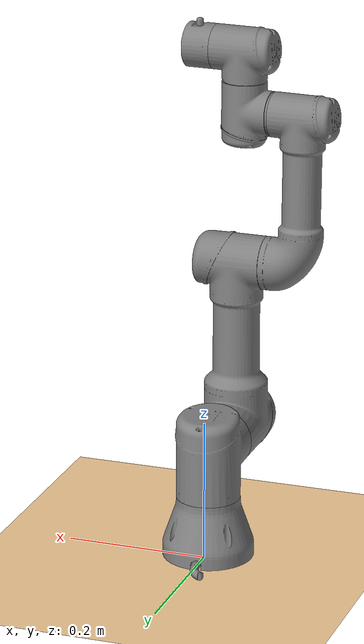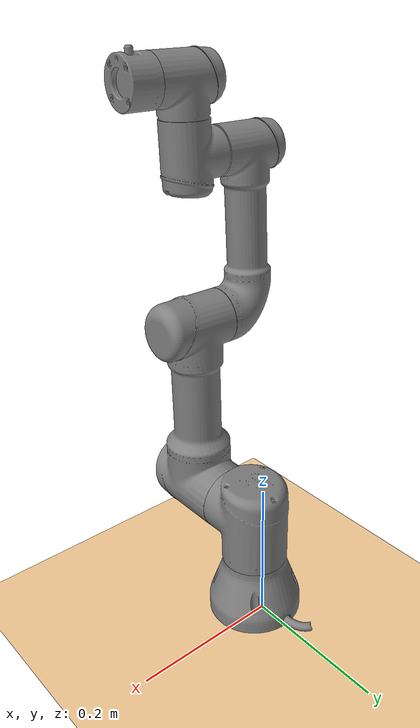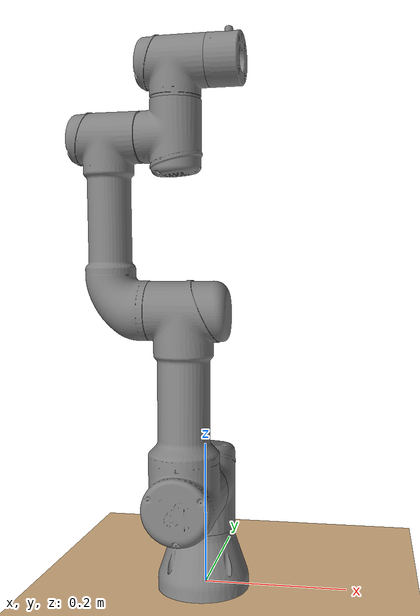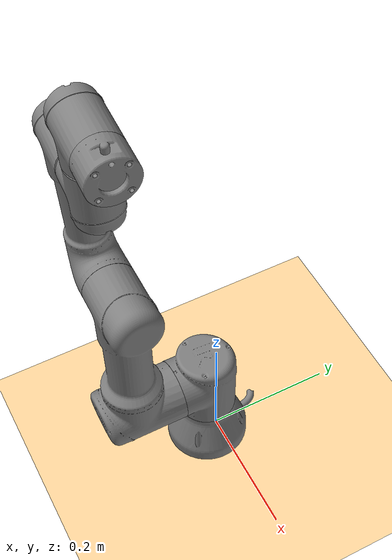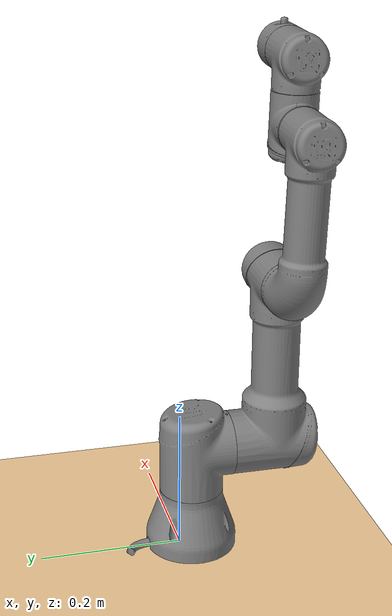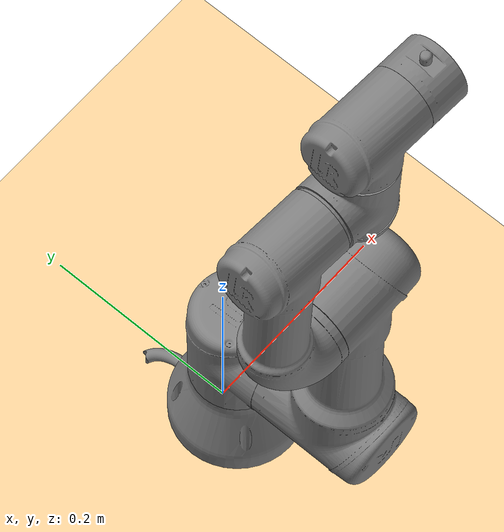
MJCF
<mujoco model="UR3">
    <compiler angle="radian" />
    <asset>
        <mesh name="link1-v4" file="meshes/link1-v4.stl" scale="0.001 0.001 0.001" />
        <mesh name="base_link-v3" file="meshes/base_link-v3.stl" scale="0.001 0.001 0.001" />
        <mesh name="link2-v3" file="meshes/link2-v3.stl" scale="0.001 0.001 0.001" />
        <mesh name="link3-v3" file="meshes/link3-v3.stl" scale="0.001 0.001 0.001" />
        <mesh name="link4-v3" file="meshes/link4-v3.stl" scale="0.001 0.001 0.001" />
        <mesh name="link5-v3" file="meshes/link5-v3.stl" scale="0.001 0.001 0.001" />
        <mesh name="link6-v3" file="meshes/link6-v3.stl" scale="0.001 0.001 0.001" />
    </asset>
    <worldbody>
        <light directional="true" pos="-0.5 0.5 3" dir="0 0 -1" />
        <geom pos="0 0 0" size="1 1 1" type="plane" rgba="1 0.83 0.61 0.5" />
        <body name="base_link-v3" pos="0.0 0.0 0.0425" euler="-0.0 0.0 -6.5052130349130235e-18">
            <geom name="base_link-v3_geom" type="mesh" mesh="base_link-v3" pos="0 0 0" euler="0 0 0" />
            <inertial mass="4.819767656359503" pos="-5.106034955521863e-05 -0.016332230855220346 0.003953847461743631" fullinertia="0.006237181628739425 0.006116331922340007 0.008054234532667305 1.938536735441771e-05 -1.7470323254963813e-05 0.00014640204534811205" />
            <body name="link1-v4" pos="0.00017721710714229611 -0.02119581809949577 0.10461075851854185" euler="1.5713279126393402 -8.474091755303828e-33 2.256949153578789e-36">
                <joint name="base_link-v3_j1" type="hinge" axis="3.460773334570648e-21 1.000000141511904 4.141054253019652e-07" pos="-0.00013621710714229563 -0.06083789902772309 -0.004010478101737522" />
                <geom name="link1-v4_geom" type="mesh" mesh="link1-v4" pos="0 0 0" euler="0 0 0" />
                <inertial mass="0.3149483948341394" pos="-0.00026523382716388396 0.04913260362366625 -0.009237325633227001" fullinertia="0.00023120994782054543 0.0004074233794319988 0.00024406222096013278 -6.830148326541089e-07 9.204290047829156e-07 -5.209320715751612e-05" />
                <body name="link2-v3" pos="0.006294247901650241 0.12205974019761957 0.11083037376403816" euler="-1.5707963267948966 1.224646799159157e-16 -3.141592653589793">
                    <joint name="link1-v4_j2" type="hinge" axis="-6.505263748201317e-18 1.0000001415119049 -4.1410542530174836e-07" pos="0.006087465008792522 -0.06084085060545213 -0.11704492428597922" />
                    <geom name="link2-v3_geom" type="mesh" mesh="link2-v3" pos="0 0 0" euler="0 0 0" />
                    <inertial mass="8.39414664490839" pos="0.003572993655582223 0.006656270016497994 0.05224937869459404" fullinertia="0.051590069759379256 0.052626722074487764 0.007764098511621637 -2.6787056217300834e-05 0.0016094650478816275 0.0023744386233859687" />
                    <body name="link3-v3" pos="0.10045134298988855 0.005243067501151337 0.24027738640715915" euler="-1.5723298162395414 0.05983020746937668 1.6026494098747472">
                        <joint name="link2-v3_j3" type="hinge" axis="-0.03179268051239002 -0.9983356048569957 0.04812337835869409" pos="0.11526664065715334 0.04818741981713634 -0.0036570430137521765" />
                        <geom name="link3-v3_geom" type="mesh" mesh="link3-v3" pos="0 0 0" euler="0 0 0" />
                        <inertial mass="7.526132329492658" pos="0.0026983442315625865 0.006042976365779464 0.0017157725936832726" fullinertia="0.0051007503145706215 0.05584323138798228 0.057051631681898585 -0.0029863817545793645 0.0017003536610661679 0.00011273379986958943" />
                        <body name="link4-v3" pos="-0.093887928397642 0.08512929771671882 0.006740809178398965" euler="-0.0018355888931882909 2.9854826446472786e-05 -0.0798670520737383">
                            <joint name="link3-v3_j4" type="hinge" axis="-0.046679492549142075 0.9989096451765861 0.00037340667036001805" pos="-0.0008053049444286388 -0.03835331465967131 -0.001914233658937797" />
                            <geom name="link4-v3_geom" type="mesh" mesh="link4-v3" pos="0 0 0" euler="0 0 0" />
                            <inertial mass="2.545842238140852" pos="-0.0017869411138815119 0.0002101581229679827 -0.0019185778391200498" fullinertia="0.0016051815572070368 0.00209342621722923 0.0023910203270252795 -1.5967007851728075e-05 1.7044927995913852e-05 5.064283854278321e-07" />
                            <body name="link5-v3" pos="-0.082170270217758 4.238125448672303e-05 -0.0009568090354241932" euler="-2.6263705768793137 1.4904678006051626 2.625771003607149">
                                <joint name="link4-v3_j5" type="hinge" axis="0.04813300752205177 -0.007095577175389419 -0.9988159220644361" pos="-0.0028326447193942213 0.002719985772956658 0.03677382563334695" />
                                <geom name="link5-v3_geom" type="mesh" mesh="link5-v3" pos="0 0 0" euler="0 0 0" />
                                <inertial mass="2.545842534539693" pos="-0.0009810150077491399 0.0019070921880051748 -0.001744244565911893" fullinertia="0.0023410122037799365 0.001604635862650408 0.002044719097671915 -6.292065784463836e-06 1.4479325932626776e-05 1.5876788376516656e-05" />
                                <body name="link6-v3" pos="0.0003959637341796629 0.06263208973460367 -0.008797675417842755" euler="1.6158492493061463 0.1304558458923421 2.702948253139903">
                                    <joint name="link5-v3_j6" type="hinge" axis="-0.1466631170670577 -0.01163870529046814 -0.9891177324769465" pos="0.0034366391161721093 -0.00018947354926481246 0.01732744420292544" />
                                    <geom name="link6-v3_geom" type="mesh" mesh="link6-v3" pos="0 0 0" euler="0 0 0" />
                                    <inertial mass="0.9016744779321996" pos="0.0006390914896667076 -0.0004967267632319083 -0.0018474851847991292" fullinertia="0.00033984520440414706 0.00033787128837576907 0.00045673272192914256 -5.001825509181874e-07 1.8126184747990864e-05 8.087316870065864e-07" />
                                </body>
                            </body>
                        </body>
                    </body>
                </body>
            </body>
        </body>
    </worldbody>
</mujoco>
